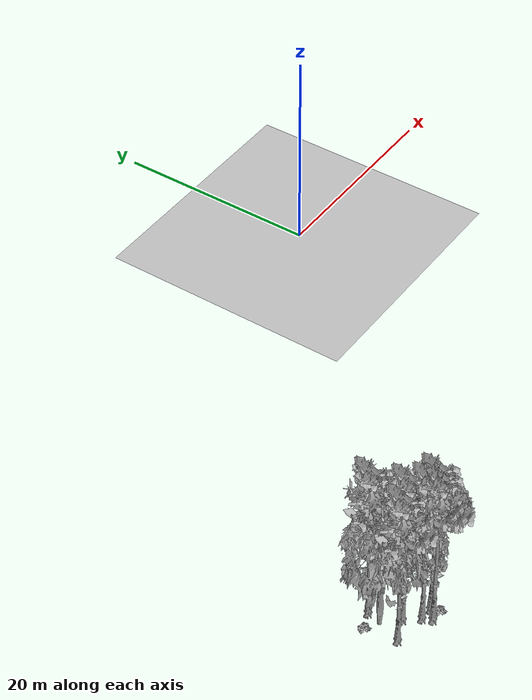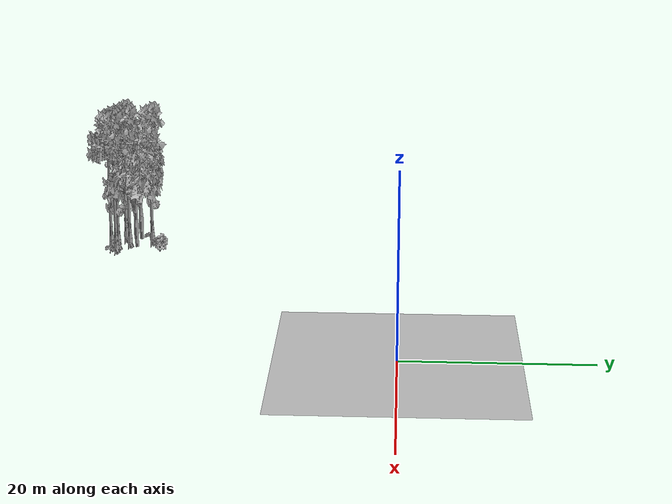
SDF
<sdf version="1.7">
 <world name="default">
  <model name="ground_plane">
   <static>1</static>
   <link name="link">
    <collision name="collision">
     <pose>-50 0 0 0 -0 0</pose>
     <geometry><plane><normal>0 0 1</normal><size>80 80</size></plane></geometry>
     <surface><contact><ode><min_depth>0.01</min_depth><max_vel>0</max_vel></ode></contact></surface>
    </collision>
    <visual name="grass">
     <cast_shadows>0</cast_shadows>
     <geometry>
      <mesh>
       <scale>0.46714285714285714 0.46714285714285714 0.1</scale>
       <uri>file://grass_plane/meshes/grass_plane.dae</uri>
      </mesh>
     </geometry>
    </visual>
   </link>
  </model>
  <model name="Tree 37">
   <static>1</static>
   <pose>-35.08478731885285 -30.36985365652938 0 1.57079 -0 0</pose>
   <link name="link">
    <collision name="collision">
     <geometry><mesh><scale>3.5 5 3.5</scale><uri>model://tree_9/meshes/tree_9.obj</uri></mesh></geometry>
    </collision>
    <visual name="visual">
     <geometry><mesh><scale>3.5 5 3.5</scale><uri>model://tree_9/meshes/tree_9.obj</uri></mesh></geometry>
    </visual>
   </link>
  </model>
  <model name="Tree 83">
   <static>1</static>
   <pose>-34.12562659077831 -32.99579961544903 0 1.57079 -0 0</pose>
   <link name="link">
    <collision name="collision">
     <geometry><mesh><scale>3.5 5 3.5</scale><uri>model://tree_9/meshes/tree_9.obj</uri></mesh></geometry>
    </collision>
    <visual name="visual">
     <geometry><mesh><scale>3.5 5 3.5</scale><uri>model://tree_9/meshes/tree_9.obj</uri></mesh></geometry>
    </visual>
   </link>
  </model>
  <model name="Tree 123">
   <static>1</static>
   <pose>-33.12436569908089 -34.20888705029302 0 1.57079 -0 0</pose>
   <link name="link">
    <collision name="collision">
     <geometry><mesh><scale>3.5 5 3.5</scale><uri>model://tree_9/meshes/tree_9.obj</uri></mesh></geometry>
    </collision>
    <visual name="visual">
     <geometry><mesh><scale>3.5 5 3.5</scale><uri>model://tree_9/meshes/tree_9.obj</uri></mesh></geometry>
    </visual>
   </link>
  </model>
  <model name="Tree 266">
   <static>1</static>
   <pose>-32.84254265904363 -31.904680497535274 0 1.57079 -0 0</pose>
   <link name="link">
    <collision name="collision">
     <geometry><mesh><scale>3.5 5 3.5</scale><uri>model://tree_2/meshes/tree_2.obj</uri></mesh></geometry>
    </collision>
    <visual name="visual">
     <geometry><mesh><scale>3.5 5 3.5</scale><uri>model://tree_2/meshes/tree_2.obj</uri></mesh></geometry>
    </visual>
   </link>
  </model>
  <model name="Tree 326">
   <static>1</static>
   <pose>-32.74877435394066 -34.990499341857614 0 1.57079 -0 0</pose>
   <link name="link">
    <collision name="collision">
     <geometry><mesh><scale>3.5 5 3.5</scale><uri>model://tree_9/meshes/tree_9.obj</uri></mesh></geometry>
    </collision>
    <visual name="visual">
     <geometry><mesh><scale>3.5 5 3.5</scale><uri>model://tree_9/meshes/tree_9.obj</uri></mesh></geometry>
    </visual>
   </link>
  </model>
  <model name="Tree 428">
   <static>1</static>
   <pose>-35.730690768339365 -31.80360817437899 0 1.57079 -0 0</pose>
   <link name="link">
    <collision name="collision">
     <geometry><mesh><scale>3.5 5 3.5</scale><uri>model://tree_2/meshes/tree_2.obj</uri></mesh></geometry>
    </collision>
    <visual name="visual">
     <geometry><mesh><scale>3.5 5 3.5</scale><uri>model://tree_2/meshes/tree_2.obj</uri></mesh></geometry>
    </visual>
   </link>
  </model>
  <model name="Tree 472">
   <static>1</static>
   <pose>-36.09094480689379 -33.784818718204804 0 1.57079 -0 0</pose>
   <link name="link">
    <collision name="collision">
     <geometry><mesh><scale>3.5 5 3.5</scale><uri>model://tree_9/meshes/tree_9.obj</uri></mesh></geometry>
    </collision>
    <visual name="visual">
     <geometry><mesh><scale>3.5 5 3.5</scale><uri>model://tree_9/meshes/tree_9.obj</uri></mesh></geometry>
    </visual>
   </link>
  </model>
  <model name="Tree 583">
   <static>1</static>
   <pose>-31.967754649459295 -34.28536237641648 0 1.57079 -0 0</pose>
   <link name="link">
    <collision name="collision">
     <geometry><mesh><scale>3.5 5 3.5</scale><uri>model://tree_9/meshes/tree_9.obj</uri></mesh></geometry>
    </collision>
    <visual name="visual">
     <geometry><mesh><scale>3.5 5 3.5</scale><uri>model://tree_9/meshes/tree_9.obj</uri></mesh></geometry>
    </visual>
   </link>
  </model>
  <model name="Bush 49">
   <static>1</static>
   <pose>-32.32030480395441 -29.03416801559991 0 1.57079 -0 0</pose>
   <link name="link">
    <collision name="collision">
     <geometry><mesh><scale>2 2 2</scale><uri>model://bush_1/meshes/bush_1.obj</uri></mesh></geometry>
     <surface><contact><collide_without_contact>false</collide_without_contact></contact></surface>
    </collision>
    <visual name="visual">
     <geometry><mesh><scale>2 2 2</scale><uri>model://bush_1/meshes/bush_1.obj</uri></mesh></geometry>
    </visual>
   </link>
  </model>
  <model name="Bush 115">
   <static>1</static>
   <pose>-31.049392316857833 -28.848227802219828 0 1.57079 -0 0</pose>
   <link name="link">
    <collision name="collision">
     <geometry><mesh><scale>2 2 2</scale><uri>model://bush_1/meshes/bush_1.obj</uri></mesh></geometry>
     <surface><contact><collide_without_contact>false</collide_without_contact></contact></surface>
    </collision>
    <visual name="visual">
     <geometry><mesh><scale>2 2 2</scale><uri>model://bush_1/meshes/bush_1.obj</uri></mesh></geometry>
    </visual>
   </link>
  </model>
  <model name="Bush 261">
   <static>1</static>
   <pose>-31.96528971494631 -35.15737420343511 0 1.57079 -0 0</pose>
   <link name="link">
    <collision name="collision">
     <geometry><mesh><scale>2 2 2</scale><uri>model://bush_2/meshes/bush_2.obj</uri></mesh></geometry>
     <surface><contact><collide_without_contact>false</collide_without_contact></contact></surface>
    </collision>
    <visual name="visual">
     <geometry><mesh><scale>2 2 2</scale><uri>model://bush_2/meshes/bush_2.obj</uri></mesh></geometry>
    </visual>
   </link>
  </model>
  <model name="Bush 584">
   <static>1</static>
   <pose>-36.81129051629322 -31.11599249614585 0 1.57079 -0 0</pose>
   <link name="link">
    <collision name="collision">
     <geometry><mesh><scale>2 2 2</scale><uri>model://bush_2/meshes/bush_2.obj</uri></mesh></geometry>
     <surface><contact><collide_without_contact>false</collide_without_contact></contact></surface>
    </collision>
    <visual name="visual">
     <geometry><mesh><scale>2 2 2</scale><uri>model://bush_2/meshes/bush_2.obj</uri></mesh></geometry>
    </visual>
   </link>
  </model>
 </world>
</sdf>
